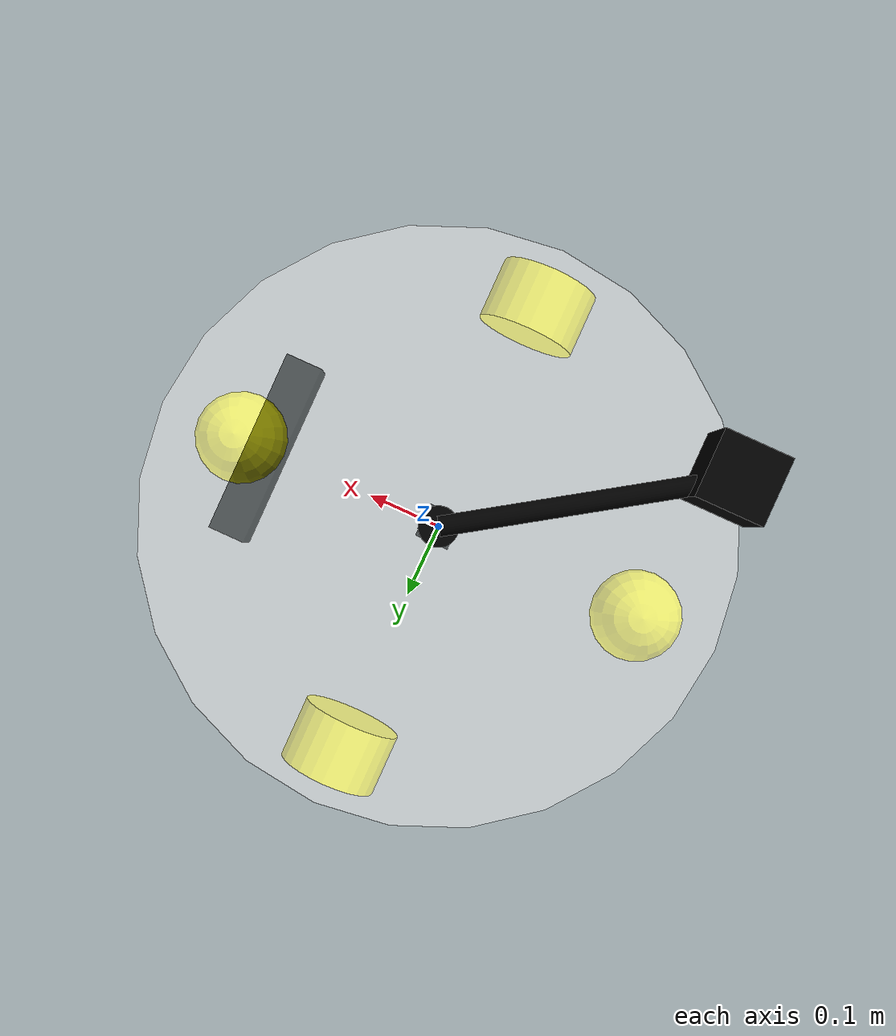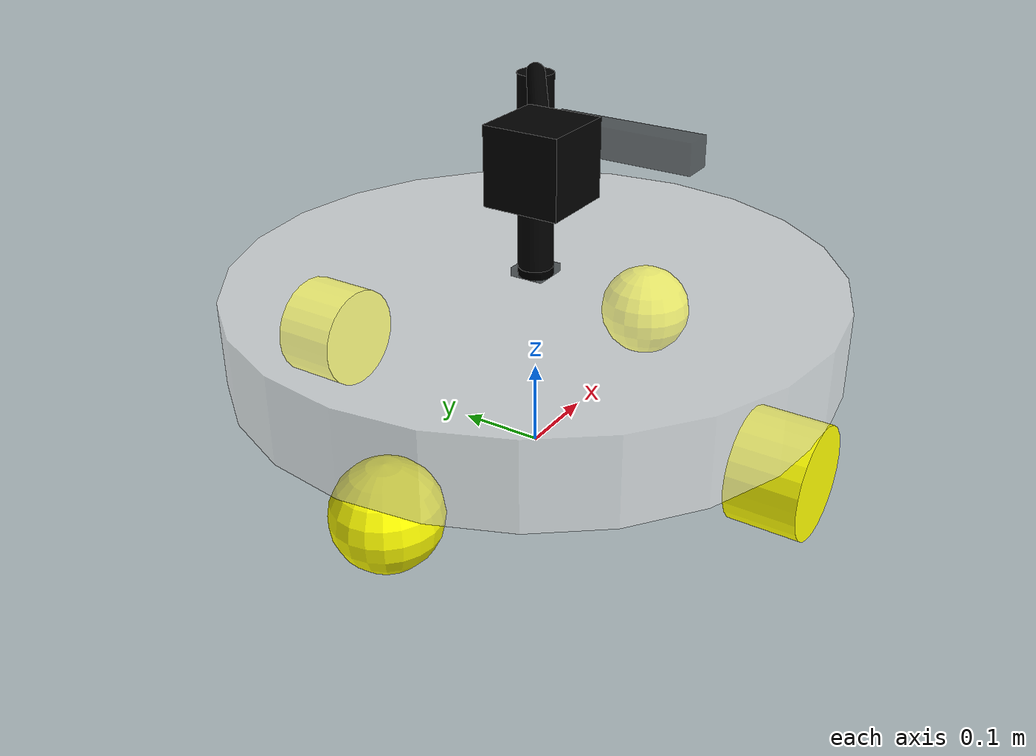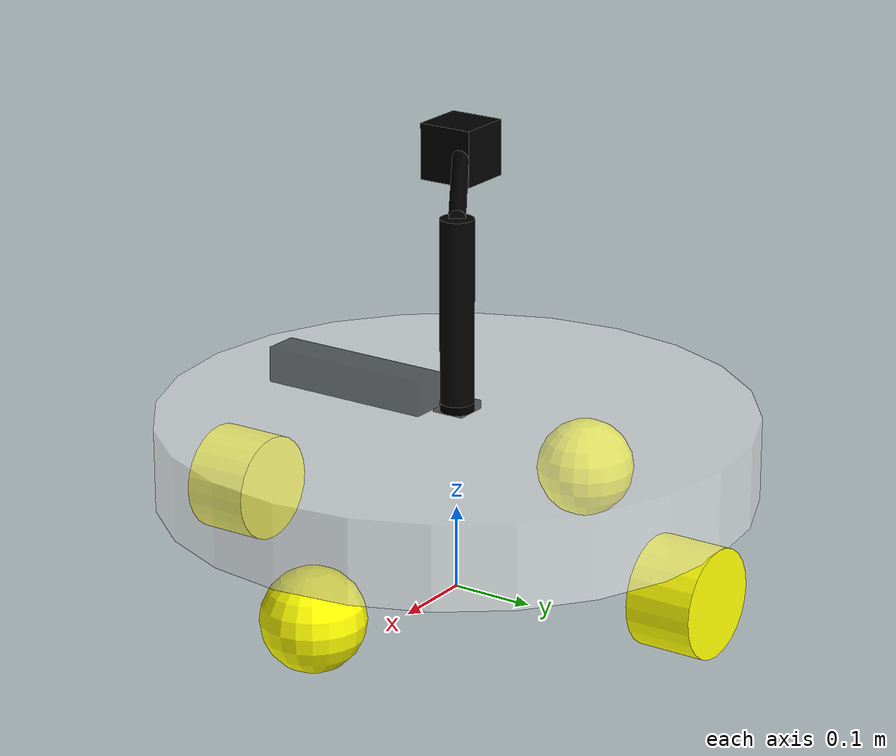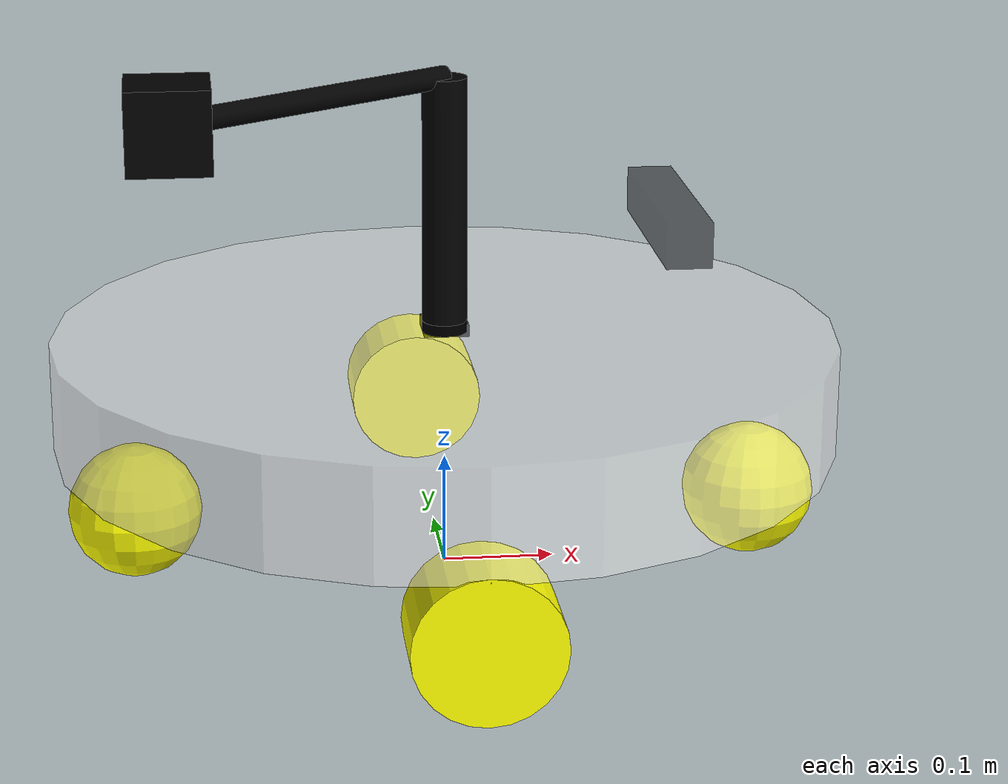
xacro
<?xml version="1.0"?>
<robot xmlns:xacro="http://www.ros.org/wiki/xacro" name="shaobing">
<!-- 基础 -->
<xacro:include filename="$(find fishbot_description)/urdf/shaobing/base.urdf.xacro"/>
<!-- 传感器 -->
<xacro:include filename="$(find fishbot_description)/urdf/shaobing/sensor/imu.urdf.xacro"/>
<xacro:include filename="$(find fishbot_description)/urdf/shaobing/sensor/camera.urdf.xacro"/>
<xacro:include filename="$(find fishbot_description)/urdf/shaobing/sensor/laser.urdf.xacro"/>
<!-- Mid-360 点云仿真传感器 -->
<xacro:include filename="$(find fishbot_description)/urdf/shaobing/sensor/mid360.xacro"/>
<!-- 执行器 -->
<xacro:include filename="$(find fishbot_description)/urdf/shaobing/actuator/wheel.urdf.xacro"/>
<xacro:include filename="$(find fishbot_description)/urdf/shaobing/actuator/caster.urdf.xacro"/>
<!-- 插件 -->
<xacro:include filename="$(find fishbot_description)/urdf/shaobing/fishbot.ros2_control.xacro"/>

<xacro:base_xacro length="0.10" radius="0.35"/>
<xacro:imu_xacro xyz="0.0 0.0 0.04"/>
<xacro:camera_xacro xyz="0.20 0.0 0.15"/>
<xacro:laser_xacro xyz="0.0 0.0 0.165"/>
<xacro:mid360_xacro horizontal_samples="1440" vertical_samples="40" update_rate="5"/>
<!-- 轮子外侧面与底盘边缘齐平；底盘中心降到 0.17，轮子 z 相应上移 0.07，保持轮心 0.063 贴地 -->
<xacro:wheel_xacro wheel_name="left_wheel" xyz="0.0 0.31 -0.107"/>
<xacro:wheel_xacro wheel_name="right_wheel" xyz="0.0 -0.31 -0.107"/>
<!-- 万向轮：净空未变(0.12)，球半径 0.06 不变、球心仍 0.06，仅 z 上移 0.07 -->
<xacro:caster_xacro caster_name="front_caster" xyz="0.28 0.0 -0.11"/>
<xacro:caster_xacro caster_name="back_caster" xyz="-0.28 0.0 -0.11"/>

<xacro:fishbot_ros2_control/>
</robot>

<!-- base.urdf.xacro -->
<robot xmlns:xacro="http://www.ros.org/wiki/xacro">
    <xacro:include filename="$(find fishbot_description)/urdf/shaobing/common_inertia.xacro"/>

    <xacro:macro name="base_xacro" params="length radius">
    <link name="base_footprint"/>

    <!--机器人身体部分 -->
    <link name="base_link">
        <!-- 部件外观描述 -->
        <visual>
           <!-- 沿着自己中心的偏移和旋转量 -->
           <origin xyz="0.0 0.0 0.0" rpy="0.0 0.0 0.0"/>
           <!-- 几何形状 -->
           <geometry>
           <!-- 圆柱体 -->
                <cylinder radius="${radius}" length="${length}"/>

           </geometry>
            <!-- 材质颜色 -->
            <material name="white">
                <color rgba="1.0 1.0 1.0 0.5"/>
            </material>
        </visual>
        <collision>
            <!-- 沿着自己中心的偏移和旋转量 -->
           <origin xyz="0.0 0.0 0.0" rpy="0.0 0.0 0.0"/>
           <!-- 几何形状 -->
           <geometry>
           <!-- 圆柱体 -->
                <cylinder radius="${radius}" length="${length}"/>

           </geometry>
            <!-- 材质颜色 -->
            <material name="white">
                <color rgba="1.0 1.0 1.0 0.5"/>
            </material>
        </collision>
        <!-- 底盘厚度 0.10m：底面离地 0.12m 不变，顶面 0.22m；关节高度 0.17 = 0.12 + 0.10/2 -->
        <xacro:cylinder_inertia m="1.0" r="${radius}" h="${length}"/>

    </link>
    <joint name="joint_name" type="fixed">
        <origin xyz="0.0 0.0 0.17" rpy="0.0 0.0 0.0"/>
        <parent link="base_footprint"/>
        <child link="base_link"/>
    </joint>

</xacro:macro>
</robot>

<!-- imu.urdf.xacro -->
<robot xmlns:xacro="http://www.ros.org/wiki/xacro">
    <xacro:include filename="$(find fishbot_description)/urdf/shaobing/common_inertia.xacro"/>

    <xacro:macro name="imu_xacro" params="xyz">
    <!-- 机器人的IMU惯性测量传感器 -->
     <link name="imu_link">
        <!-- 部件外观描述 -->
        <visual>
           <!-- 沿着自己中心的偏移和旋转量 -->
           <origin xyz="0.0 0.0 0.0" rpy="0.0 0.0 0.0"/>
           <!-- 几何形状 -->
           <geometry>
           <!-- 长方体 -->
               <box size="0.04 0.04 0.04"/>

           </geometry>
            <!-- 材质颜色 -->
            <material name="black">
                <color rgba="0.0 0.0 0.0 0.5"/>
            </material>
        </visual>
        <collision>
            <!-- 沿着自己中心的偏移和旋转量 -->
            <origin xyz="0.0 0.0 0.0" rpy="0.0 0.0 0.0"/>
            <!-- 几何形状 -->
            <geometry>
            <!-- 长方体 -->
                <box size="0.04 0.04 0.04"/>

            </geometry>
        </collision>
        <!-- box 0.04 x 0.04 x 0.04，嵌在底盘内部 -->
        <xacro:box_inertia m="0.05" w="0.04" h="0.04" d="0.04"/>
    </link>

    <!-- 机器人的关节，用来组合机器人的部件 -->
    <joint name="imu_joint" type="fixed">
        <parent link="base_link"/>
        <child link="imu_link"/>
        <origin xyz="${xyz}" rpy="0.0 0.0 0.0"/>
    </joint>

    <gazebo reference="imu_link">
        <material>Gazebo/Black</material>
    </gazebo>

</xacro:macro>
</robot>

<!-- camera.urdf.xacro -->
<robot xmlns:xacro="http://www.ros.org/wiki/xacro">
    <xacro:include filename="$(find fishbot_description)/urdf/shaobing/common_inertia.xacro"/>
    <xacro:macro name="camera_xacro" params="xyz">
    <!-- camera -->
     <link name="camera_link">
        <!-- 部件外观描述 -->
        <visual>
           <!-- 沿着自己中心的偏移和旋转量 -->
           <origin xyz="0.0 0.0 0.0" rpy="0.0 0.0 0.0"/>
           <!-- 几何形状 -->
           <geometry>
           <!-- 长方体 -->
               <box size="0.04 0.20 0.04"/>

           </geometry>
            <!-- 材质颜色 -->
            <material name="black">
                <color rgba="0.0 0.0 0.0 0.5"/>
            </material>
        </visual>
        <collision>
            <!-- 沿着自己中心的偏移和旋转量 -->
            <origin xyz="0.0 0.0 0.0" rpy="0.0 0.0 0.0"/>
            <!-- 几何形状 -->
            <geometry>
            <!-- 长方体 -->
                <box size="0.04 0.20 0.04"/>

            </geometry>
        </collision>
        <!-- box 0.04 x 0.20 x 0.04 -->
        <xacro:box_inertia m="0.05" w="0.04" h="0.20" d="0.04"/>
    </link>
    <link name="camera_optical_link">

    </link>

     <!-- 机器人的关节，用来组合机器人的部件 -->
    <joint name="camera_joint" type="fixed">
        <parent link="base_link"/>
        <child link="camera_link"/>
        <origin xyz="${xyz}" rpy="0.0 0.0 0.0"/>
    </joint>
    <!-- 机器人的关节，用来组合机器人的部件 -->
    <joint name="camera_optical_joint" type="fixed">
        <parent link="camera_link"/>
        <child link="camera_optical_link"/>
        <origin xyz="0 0 0" rpy="${-pi/2} 0.0 ${-pi/2}"/>
    </joint>

    <gazebo reference="camera_link">
        <material>Gazebo/Black</material>
    </gazebo>

</xacro:macro>
</robot>

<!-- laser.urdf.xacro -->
<robot xmlns:xacro="http://www.ros.org/wiki/xacro">
    <xacro:include filename="$(find fishbot_description)/urdf/shaobing/common_inertia.xacro"/>

    <xacro:macro name="laser_xacro" params="xyz">
    <!-- 雷达支撑杆：r=0.02 h=0.23，向下接住底盘顶面(0.22m)，顶端 0.45m -->
     <link name="laser_cylinder_link">
        <!-- 部件外观描述 -->
        <visual>
           <!-- 沿着自己中心的偏移和旋转量 -->
           <origin xyz="0.0 0.0 0.0" rpy="0.0 0.0 0.0"/>
           <!-- 几何形状 -->
           <geometry>
           <!-- 圆柱体 -->
                <cylinder radius="0.02" length="0.23"/>

           </geometry>
            <!-- 材质颜色 -->
            <material name="black">
                <color rgba="0.0 0.0 0.0 1.0"/>
            </material>
        </visual>
        <collision>
             <!-- 沿着自己中心的偏移和旋转量 -->
           <origin xyz="0.0 0.0 0.0" rpy="0.0 0.0 0.0"/>
           <!-- 几何形状 -->
           <geometry>
           <!-- 圆柱体 -->
                <cylinder radius="0.02" length="0.23"/>

           </geometry>
        </collision>
         <xacro:cylinder_inertia m="0.05" r="0.02" h="0.23"/>
    </link>
     <!-- 雷达：7cm 边长正方体，中心离地 0.45m -->
     <link name="laser_link">
        <!-- 部件外观描述 -->
        <visual>
           <!-- 沿着自己中心的偏移和旋转量 -->
           <origin xyz="0.0 0.0 0.0" rpy="0.0 0.0 0.0"/>
           <!-- 几何形状 -->
           <geometry>
           <!-- 正方体 -->
               <box size="0.07 0.07 0.07"/>

           </geometry>
            <!-- 材质颜色 -->
            <material name="black">
                <color rgba="0.0 0.0 0.0 1.0"/>
            </material>
        </visual>
        <collision>
           <!-- 沿着自己中心的偏移和旋转量 -->
           <origin xyz="0.0 0.0 0.0" rpy="0.0 0.0 0.0"/>
           <!-- 几何形状 -->
           <geometry>
           <!-- 正方体 -->
               <box size="0.07 0.07 0.07"/>

           </geometry>
        </collision>
         <xacro:box_inertia m="0.10" w="0.07" h="0.07" d="0.07"/>
    </link>

    <!-- 水平连接杆：在 0.45m 高度，从支撑杆顶端(0,0,0.45)水平伸向雷达中心(-0.239,-0.158,0.45)
         长度 = sqrt(0.239^2 + 0.158^2) = 0.2865m，绕 Z 轴指向 -2.5579rad -->
    <link name="laser_connector_link">
        <visual>
           <!-- 沿着自己中心的偏移和旋转量 -->
           <origin xyz="0.0 0.0 0.0" rpy="0.0 0.0 0.0"/>
           <!-- 几何形状 -->
           <geometry>
           <!-- 圆柱体 -->
               <cylinder radius="0.01" length="0.2865"/>

           </geometry>
            <!-- 材质颜色 -->
            <material name="black">
                <color rgba="0.0 0.0 0.0 1.0"/>
            </material>
        </visual>
        <collision>
           <!-- 沿着自己中心的偏移和旋转量 -->
           <origin xyz="0.0 0.0 0.0" rpy="0.0 0.0 0.0"/>
           <!-- 几何形状 -->
           <geometry>
           <!-- 圆柱体 -->
               <cylinder radius="0.01" length="0.2865"/>

           </geometry>
        </collision>
        <xacro:cylinder_inertia m="0.02" r="0.01" h="0.2865"/>
    </link>

    <!-- 连接杆装在支撑杆中心正上方 0.115m 处（即杆顶 0.45m），先绕 Y 转 90 度放平，再绕 Z 转 -2.5579rad 指向雷达 -->
    <joint name="laser_connector_joint" type="fixed">
        <parent link="laser_cylinder_link"/>
        <child link="laser_connector_link"/>
        <origin xyz="-0.1195 -0.079 0.115" rpy="0.0 1.5708 -2.5579"/>
    </joint>

    <!-- 雷达中心位于 x=-0.239 y=-0.158，高度不变（0.45m） -->
    <joint name="laser_joint" type="fixed">
        <parent link="laser_cylinder_link"/>
        <child link="laser_link"/>
        <origin xyz="-0.239 -0.158 0.115" rpy="0.0 0.0 0.0"/>
    </joint>
     <joint name="laser_cylinderjoint" type="fixed">
        <parent link="base_link"/>
        <child link="laser_cylinder_link"/>
        <origin xyz="${xyz}" rpy="0.0 0.0 0.0"/>
    </joint>
    <gazebo reference='laser_cylinder_link'>
       <material>Gazebo/Black</material>
    </gazebo>
    <gazebo reference='laser_connector_link'>
       <material>Gazebo/Black</material>
    </gazebo>
    <gazebo reference='laser_link'>
        <material>Gazebo/Black</material>
    </gazebo>
</xacro:macro>
</robot>

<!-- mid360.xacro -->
<robot xmlns:xacro="http://www.ros.org/wiki/xacro">
    <xacro:macro name="mid360_xacro"
                 params="parent:='laser_link' xyz:='0 0 0'
                         horizontal_samples:=720 vertical_samples:=16
                         update_rate:=10 range_max:=40.0">

        <!-- 传感器安装坐标系：空 link，仅提供姿态参考（无 visual/collision/inertia） -->
        <link name="livox_frame"/>

        <!-- 相对父 link 上仰 22.5°：绕 Y 轴转 -0.3927rad 使 +X 轴抬起 -->
        <joint name="livox_frame_joint" type="fixed">
            <parent link="${parent}"/>
            <child link="livox_frame"/>
            <origin xyz="${xyz}" rpy="0 -0.3927 0"/>
        </joint>

        <gazebo reference="livox_frame">
            <sensor name="livox_mid360" type="gpu_ray">
                <!-- 姿态已在 joint 里，这里保持零，避免点云与 TF 不一致 -->
                <pose>0 0 0 0 0 0</pose>
                <!-- 关闭射线可视化：720x16=11520 条射线全画出来会把 gzclient 拖垮（界面里那些蓝线）
                     仅在需要确认射线方向时临时改 true，并同时把采样数调小 -->
                <visualize>false</visualize>
                <!-- 帧率 10Hz，对应 Mid-360 真实帧率 -->
                <update_rate>${update_rate}</update_rate>
                <ray>
                    <scan>
                        <horizontal>
                            <!-- 720 点 = 0.5°/点，水平 360° -->
                            <samples>${horizontal_samples}</samples>
                            <resolution>1</resolution>
                            <min_angle>-3.14159265</min_angle>
                            <max_angle>3.14159265</max_angle>
                        </horizontal>
                        <vertical>
                            <!-- 16 层 = 3.9°/层；±29.5° 经安装上仰后变成 -7°~+52° -->
                            <samples>${vertical_samples}</samples>
                            <resolution>1</resolution>
                            <min_angle>-0.5149</min_angle>
                            <max_angle>0.5149</max_angle>
                        </vertical>
                    </scan>
                    <range>
                        <!-- Mid-360：盲区 0.1m，量程 40m @10% 反射率 -->
                        <min>0.1</min>
                        <max>${range_max}</max>
                        <resolution>0.01</resolution>
                    </range>
                    <noise>
                        <!-- 高斯噪声：σ=2mm（原 1cm 会让地面点被噪声"顶"进薄切片带，
                             在 2D 建图时产生一圈假的近距回波） -->
                        <type>gaussian</type>
                        <mean>0.0</mean>
                        <stddev>0.002</stddev>
                    </noise>
                </ray>
                <plugin name="livox_mid360_plugin" filename="libgazebo_ros_ray_sensor.so">
                    <ros>
                        <namespace>/</namespace>
                        <!-- 话题名对齐真实驱动 -->
                        <remapping>~/out:=livox/lidar</remapping>
                    </ros>
                    <!-- 多层传感器必须用 PointCloud2，LaserScan 装不下垂直信息 -->
                    <output_type>sensor_msgs/PointCloud2</output_type>
                    <frame_name>livox_frame</frame_name>
                </plugin>
            </sensor>
        </gazebo>

    </xacro:macro>
</robot>

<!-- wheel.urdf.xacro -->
<robot xmlns:xacro="http://www.ros.org/wiki/xacro">
    <xacro:include filename="$(find fishbot_description)/urdf/shaobing/common_inertia.xacro"/>

    <xacro:macro name="wheel_xacro" params="wheel_name xyz">
    <!-- 机器人的轮子 -->
     <link name="${wheel_name}_link">
        <!-- 部件外观描述 -->
        <visual>
           <!-- 沿着自己中心的偏移和旋转量 -->
           <origin xyz="0.0 0.0 0.0" rpy="1.57079 0.0 0.0"/>
           <!-- 几何形状 -->
           <geometry>
           <!-- 圆柱体 -->
               <cylinder radius="0.064" length="0.08"/>

           </geometry>
            <!-- 材质颜色 -->
            <material name="yellow">
                <color rgba="1.0 1.0 0.0 1.0"/>
            </material>
        </visual>
        <collision>
           <!-- 沿着自己中心的偏移和旋转量 -->
           <origin xyz="0.0 0.0 0.0" rpy="1.57079 0.0 0.0"/>
           <!-- 几何形状 -->
           <geometry>
           <!-- 圆柱体 -->
               <cylinder radius="0.064" length="0.08"/>

           </geometry>
        </collision>
        <!-- 半径 0.064，厚 0.08 -->
        <xacro:cylinder_inertia m="0.05" r="0.064" h="0.08"/>
    </link>

    <!-- 机器人的关节，用来组合机器人的部件 -->
    <joint name="${wheel_name}_joint" type="continuous">
        <parent link="base_link"/>
        <child link="${wheel_name}_link"/>
        <origin xyz="${xyz}" rpy="0.0 0.0 0.0"/>
        <axis xyz="0 1 0"/>
    </joint>

    <gazebo reference="${wheel_name}_link">
        <material>Gazebo/Yellow</material>
        <!-- 抓地力：越大越不容易打滑，越障能力越强 -->
        <mu1 value="20.0"/>
        <mu2 value="20.0"/>
        <kp value="1000000000.0"/>
        <kd value="1.0"/>
        <minDepth value="0.001"/>
        <maxVel value="0.1"/>
    </gazebo>

</xacro:macro>
</robot>

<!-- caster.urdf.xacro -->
<robot xmlns:xacro="http://www.ros.org/wiki/xacro">
    <xacro:include filename="$(find fishbot_description)/urdf/shaobing/common_inertia.xacro"/>

    <xacro:macro name="caster_xacro" params="caster_name xyz">
    <!-- 机器人的万向轮子 -->
     <link name="${caster_name}_link">
        <!-- 部件外观描述 -->
        <visual>
           <!-- 沿着自己中心的偏移和旋转量 -->
           <origin xyz="0.0 0.0 0.0" rpy="0.0 0.0 0.0"/>
           <!-- 几何形状 -->
           <geometry>
           <!-- 球：半径 0.06，直径恰好等于底盘底面离地高度 0.12，同时接触地面与底盘 -->
          <sphere radius="0.06"/>
           </geometry>
            <!-- 材质颜色 -->
            <material name="yellow">
                <color rgba="1.0 1.0 0.0 1.0"/>
            </material>
        </visual>
        <collision>
           <!-- 沿着自己中心的偏移和旋转量 -->
           <origin xyz="0.0 0.0 0.0" rpy="0.0 0.0 0.0"/>
           <!-- 几何形状 -->
           <geometry>
          <sphere radius="0.06"/>
           </geometry>
        </collision>
        <!-- 球半径 0.06 -->
        <xacro:sphere_inertia m="0.05" r="0.06"/>
    </link>

    <!-- 机器人的关节，用来组合机器人的部件 -->
    <joint name="${caster_name}_joint" type="fixed">
        <parent link="base_link"/>
        <child link="${caster_name}_link"/>
        <origin xyz="${xyz}" rpy="0.0 0.0 0.0"/>
        <axis xyz="0 1 0"/>
    </joint>

    <gazebo reference="${caster_name}_link">
        <material>Gazebo/Yellow</material>
        <!-- 万向球必须无摩擦，否则固定球会卡在障碍边缘 -->
        <mu1 value="0.0"/>
        <mu2 value="0.0"/>
        <kp value="1000000000.0"/>
        <kd value="1.0"/>
    </gazebo>

</xacro:macro>
</robot>
